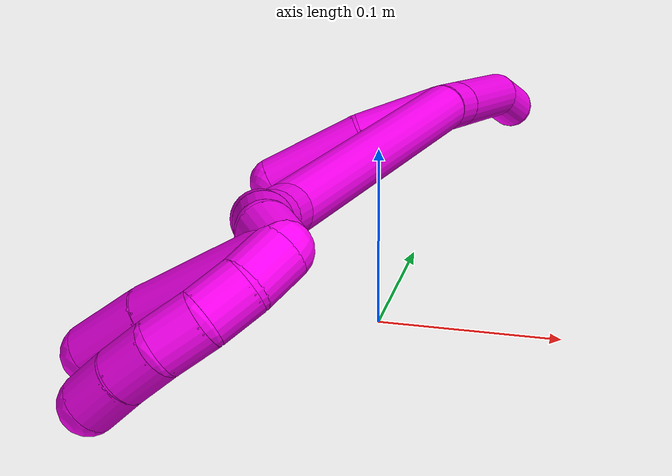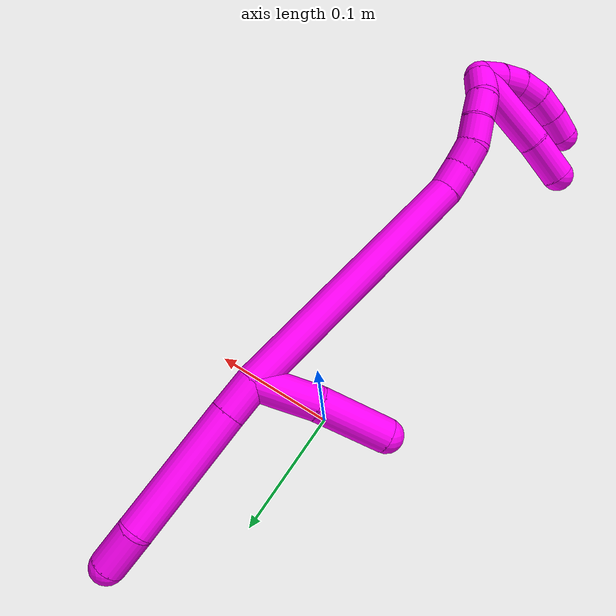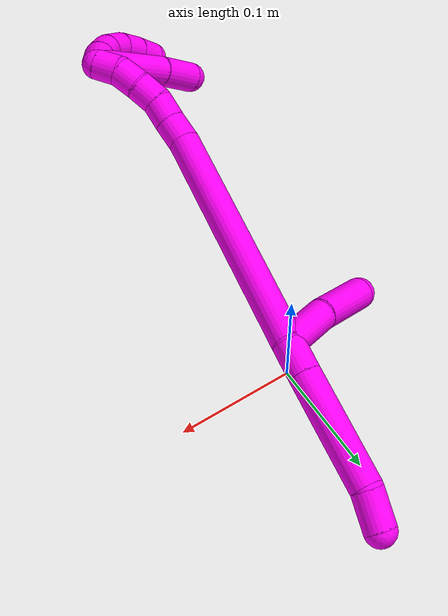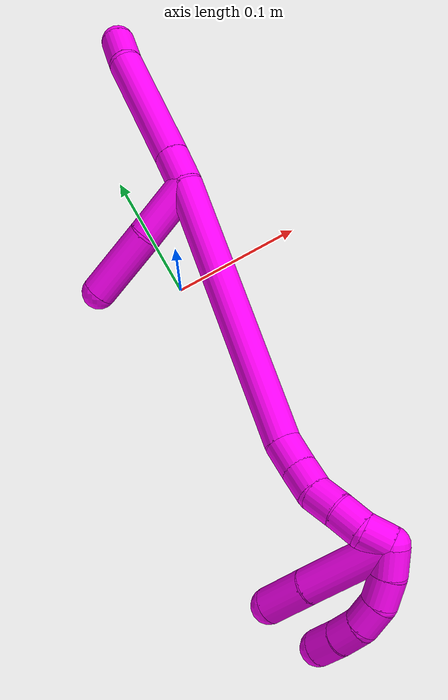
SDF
<sdf version="1.7">
 <world name="default">
  <model name="10">
   <static>0</static>
   <link name="10">
    <collision name="collision-cylinder-e_1_2_8">
     <pose>-0.00021 0.009779 -0.009098 -2.32016 -0.015692 0.03603</pose>
     <geometry><cylinder><radius>0.0125</radius><length>0.026716</length></cylinder></geometry>
     <surface>
      <friction><ode><mu>1.16</mu><mu2>1.16</mu2><slip1>0</slip1><slip2>0</slip2></ode></friction>
      <contact><ode><kp>1e+06</kp><kd>1</kd><max_vel>0</max_vel><min_depth>0.001</min_depth></ode></contact>
     </surface>
    </collision>
    <visual name="visual-cylinder-e_1_2_8">
     <pose>-0.00021 0.009779 -0.009098 -2.32016 -0.015692 0.03603</pose>
     <geometry><cylinder><radius>0.0125</radius><length>0.026716</length></cylinder></geometry>
     <material><ambient>1 0 0.964706 1</ambient></material>
    </visual>
    <collision name="collision-cylinder-e_2_8_9">
     <pose>-0.000662 0.053947 -0.04926 -2.30542 -0.005249 0.011815</pose>
     <geometry><cylinder><radius>0.0125</radius><length>0.092685</length></cylinder></geometry>
     <surface>
      <friction><ode><mu>1.16</mu><mu2>1.16</mu2><slip1>0</slip1><slip2>0</slip2></ode></friction>
      <contact><ode><kp>1e+06</kp><kd>1</kd><max_vel>0</max_vel><min_depth>0.001</min_depth></ode></contact>
     </surface>
    </collision>
    <visual name="visual-cylinder-e_2_8_9">
     <pose>-0.000662 0.053947 -0.04926 -2.30542 -0.005249 0.011815</pose>
     <geometry><cylinder><radius>0.0125</radius><length>0.092685</length></cylinder></geometry>
     <material><ambient>1 0 0.964706 1</ambient></material>
    </visual>
    <collision name="collision-cylinder-e_3_9_6">
     <pose>-0.004688 0.100905 -0.088183 -2.12964 -0.249808 0.44568</pose>
     <geometry><cylinder><radius>0.0125</radius><length>0.030599</length></cylinder></geometry>
     <surface>
      <friction><ode><mu>1.16</mu><mu2>1.16</mu2><slip1>0</slip1><slip2>0</slip2></ode></friction>
      <contact><ode><kp>1e+06</kp><kd>1</kd><max_vel>0</max_vel><min_depth>0.001</min_depth></ode></contact>
     </surface>
    </collision>
    <visual name="visual-cylinder-e_3_9_6">
     <pose>-0.004688 0.100905 -0.088183 -2.12964 -0.249808 0.44568</pose>
     <geometry><cylinder><radius>0.0125</radius><length>0.030599</length></cylinder></geometry>
     <material><ambient>1 0 0.964706 1</ambient></material>
    </visual>
    <collision name="collision-cylinder-e_1_2_10">
     <pose>0.011209 0.007045 0.018524 -0.363422 0.514733 -0.096646</pose>
     <geometry><cylinder><radius>0.0125</radius><length>0.045538</length></cylinder></geometry>
     <surface>
      <friction><ode><mu>1.16</mu><mu2>1.16</mu2><slip1>0</slip1><slip2>0</slip2></ode></friction>
      <contact><ode><kp>1e+06</kp><kd>1</kd><max_vel>0</max_vel><min_depth>0.001</min_depth></ode></contact>
     </surface>
    </collision>
    <visual name="visual-cylinder-e_1_2_10">
     <pose>0.011209 0.007045 0.018524 -0.363422 0.514733 -0.096646</pose>
     <geometry><cylinder><radius>0.0125</radius><length>0.045538</length></cylinder></geometry>
     <material><ambient>1 0 0.964706 1</ambient></material>
    </visual>
    <collision name="collision-cylinder-e_2_10_5">
     <pose>0.033144 0.026181 0.058965 -0.504133 0.404831 -0.105611</pose>
     <geometry><cylinder><radius>0.0125</radius><length>0.054462</length></cylinder></geometry>
     <surface>
      <friction><ode><mu>1.16</mu><mu2>1.16</mu2><slip1>0</slip1><slip2>0</slip2></ode></friction>
      <contact><ode><kp>1e+06</kp><kd>1</kd><max_vel>0</max_vel><min_depth>0.001</min_depth></ode></contact>
     </surface>
    </collision>
    <visual name="visual-cylinder-e_2_10_5">
     <pose>0.033144 0.026181 0.058965 -0.504133 0.404831 -0.105611</pose>
     <geometry><cylinder><radius>0.0125</radius><length>0.054462</length></cylinder></geometry>
     <material><ambient>1 0 0.964706 1</ambient></material>
    </visual>
    <collision name="collision-cylinder-e_1_2_11">
     <pose>-0.002955 -0.0604 0.078212 0.657599 -0.029894 -0.0102</pose>
     <geometry><cylinder><radius>0.0125</radius><length>0.197726</length></cylinder></geometry>
     <surface>
      <friction><ode><mu>1.16</mu><mu2>1.16</mu2><slip1>0</slip1><slip2>0</slip2></ode></friction>
      <contact><ode><kp>1e+06</kp><kd>1</kd><max_vel>0</max_vel><min_depth>0.001</min_depth></ode></contact>
     </surface>
    </collision>
    <visual name="visual-cylinder-e_1_2_11">
     <pose>-0.002955 -0.0604 0.078212 0.657599 -0.029894 -0.0102</pose>
     <geometry><cylinder><radius>0.0125</radius><length>0.197726</length></cylinder></geometry>
     <material><ambient>1 0 0.964706 1</ambient></material>
    </visual>
    <collision name="collision-cylinder-e_2_11_12">
     <pose>-0.006828 -0.129218 0.163298 0.885949 -0.084239 -0.039983</pose>
     <geometry><cylinder><radius>0.0125</radius><length>0.021814</length></cylinder></geometry>
     <surface>
      <friction><ode><mu>1.16</mu><mu2>1.16</mu2><slip1>0</slip1><slip2>0</slip2></ode></friction>
      <contact><ode><kp>1e+06</kp><kd>1</kd><max_vel>0</max_vel><min_depth>0.001</min_depth></ode></contact>
     </surface>
    </collision>
    <visual name="visual-cylinder-e_2_11_12">
     <pose>-0.006828 -0.129218 0.163298 0.885949 -0.084239 -0.039983</pose>
     <geometry><cylinder><radius>0.0125</radius><length>0.021814</length></cylinder></geometry>
     <material><ambient>1 0 0.964706 1</ambient></material>
    </visual>
    <collision name="collision-cylinder-e_3_12_13">
     <pose>-0.007804 -0.146198 0.175607 1.00527 -0.005754 -0.003163</pose>
     <geometry><cylinder><radius>0.0125</radius><length>0.020283</length></cylinder></geometry>
     <surface>
      <friction><ode><mu>1.16</mu><mu2>1.16</mu2><slip1>0</slip1><slip2>0</slip2></ode></friction>
      <contact><ode><kp>1e+06</kp><kd>1</kd><max_vel>0</max_vel><min_depth>0.001</min_depth></ode></contact>
     </surface>
    </collision>
    <visual name="visual-cylinder-e_3_12_13">
     <pose>-0.007804 -0.146198 0.175607 1.00527 -0.005754 -0.003163</pose>
     <geometry><cylinder><radius>0.0125</radius><length>0.020283</length></cylinder></geometry>
     <material><ambient>1 0 0.964706 1</ambient></material>
    </visual>
    <collision name="collision-cylinder-e_4_13_14">
     <pose>-0.010538 -0.163718 0.184627 1.19009 -0.270524 -0.18372</pose>
     <geometry><cylinder><radius>0.0125</radius><length>0.020025</length></cylinder></geometry>
     <surface>
      <friction><ode><mu>1.16</mu><mu2>1.16</mu2><slip1>0</slip1><slip2>0</slip2></ode></friction>
      <contact><ode><kp>1e+06</kp><kd>1</kd><max_vel>0</max_vel><min_depth>0.001</min_depth></ode></contact>
     </surface>
    </collision>
    <visual name="visual-cylinder-e_4_13_14">
     <pose>-0.010538 -0.163718 0.184627 1.19009 -0.270524 -0.18372</pose>
     <geometry><cylinder><radius>0.0125</radius><length>0.020025</length></cylinder></geometry>
     <material><ambient>1 0 0.964706 1</ambient></material>
    </visual>
    <collision name="collision-cylinder-e_5_14_15">
     <pose>-0.016679 -0.180973 0.192676 1.07724 -0.352451 -0.212019</pose>
     <geometry><cylinder><radius>0.0125</radius><length>0.020078</length></cylinder></geometry>
     <surface>
      <friction><ode><mu>1.16</mu><mu2>1.16</mu2><slip1>0</slip1><slip2>0</slip2></ode></friction>
      <contact><ode><kp>1e+06</kp><kd>1</kd><max_vel>0</max_vel><min_depth>0.001</min_depth></ode></contact>
     </surface>
    </collision>
    <visual name="visual-cylinder-e_5_14_15">
     <pose>-0.016679 -0.180973 0.192676 1.07724 -0.352451 -0.212019</pose>
     <geometry><cylinder><radius>0.0125</radius><length>0.020078</length></cylinder></geometry>
     <material><ambient>1 0 0.964706 1</ambient></material>
    </visual>
    <collision name="collision-cylinder-e_6_15_1">
     <pose>-0.026473 -0.19614 0.200812 1.07983 -0.682233 -0.419253</pose>
     <geometry><cylinder><radius>0.0125</radius><length>0.020073</length></cylinder></geometry>
     <surface>
      <friction><ode><mu>1.16</mu><mu2>1.16</mu2><slip1>0</slip1><slip2>0</slip2></ode></friction>
      <contact><ode><kp>1e+06</kp><kd>1</kd><max_vel>0</max_vel><min_depth>0.001</min_depth></ode></contact>
     </surface>
    </collision>
    <visual name="visual-cylinder-e_6_15_1">
     <pose>-0.026473 -0.19614 0.200812 1.07983 -0.682233 -0.419253</pose>
     <geometry><cylinder><radius>0.0125</radius><length>0.020073</length></cylinder></geometry>
     <material><ambient>1 0 0.964706 1</ambient></material>
    </visual>
    <collision name="collision-cylinder-e_1_1_16">
     <pose>-0.032631 -0.203016 0.214483 0.000605 0.017029 5e-06</pose>
     <geometry><cylinder><radius>0.0125</radius><length>0.02</length></cylinder></geometry>
     <surface>
      <friction><ode><mu>1.16</mu><mu2>1.16</mu2><slip1>0</slip1><slip2>0</slip2></ode></friction>
      <contact><ode><kp>1e+06</kp><kd>1</kd><max_vel>0</max_vel><min_depth>0.001</min_depth></ode></contact>
     </surface>
    </collision>
    <visual name="visual-cylinder-e_1_1_16">
     <pose>-0.032631 -0.203016 0.214483 0.000605 0.017029 5e-06</pose>
     <geometry><cylinder><radius>0.0125</radius><length>0.02</length></cylinder></geometry>
     <material><ambient>1 0 0.964706 1</ambient></material>
    </visual>
    <collision name="collision-cylinder-e_2_16_17">
     <pose>-0.03101 -0.201363 0.234236 -0.168476 0.145573 -0.012313</pose>
     <geometry><cylinder><radius>0.0125</radius><length>0.02</length></cylinder></geometry>
     <surface>
      <friction><ode><mu>1.16</mu><mu2>1.16</mu2><slip1>0</slip1><slip2>0</slip2></ode></friction>
      <contact><ode><kp>1e+06</kp><kd>1</kd><max_vel>0</max_vel><min_depth>0.001</min_depth></ode></contact>
     </surface>
    </collision>
    <visual name="visual-cylinder-e_2_16_17">
     <pose>-0.03101 -0.201363 0.234236 -0.168476 0.145573 -0.012313</pose>
     <geometry><cylinder><radius>0.0125</radius><length>0.02</length></cylinder></geometry>
     <material><ambient>1 0 0.964706 1</ambient></material>
    </visual>
    <collision name="collision-cylinder-e_3_17_18">
     <pose>-0.026902 -0.195204 0.252516 -0.485694 0.268988 -0.067018</pose>
     <geometry><cylinder><radius>0.0125</radius><length>0.02</length></cylinder></geometry>
     <surface>
      <friction><ode><mu>1.16</mu><mu2>1.16</mu2><slip1>0</slip1><slip2>0</slip2></ode></friction>
      <contact><ode><kp>1e+06</kp><kd>1</kd><max_vel>0</max_vel><min_depth>0.001</min_depth></ode></contact>
     </surface>
    </collision>
    <visual name="visual-cylinder-e_3_17_18">
     <pose>-0.026902 -0.195204 0.252516 -0.485694 0.268988 -0.067018</pose>
     <geometry><cylinder><radius>0.0125</radius><length>0.02</length></cylinder></geometry>
     <material><ambient>1 0 0.964706 1</ambient></material>
    </visual>
    <collision name="collision-cylinder-e_4_18_19">
     <pose>-0.021727 -0.183695 0.267716 -0.80981 0.254476 -0.109548</pose>
     <geometry><cylinder><radius>0.0125</radius><length>0.02</length></cylinder></geometry>
     <surface>
      <friction><ode><mu>1.16</mu><mu2>1.16</mu2><slip1>0</slip1><slip2>0</slip2></ode></friction>
      <contact><ode><kp>1e+06</kp><kd>1</kd><max_vel>0</max_vel><min_depth>0.001</min_depth></ode></contact>
     </surface>
    </collision>
    <visual name="visual-cylinder-e_4_18_19">
     <pose>-0.021727 -0.183695 0.267716 -0.80981 0.254476 -0.109548</pose>
     <geometry><cylinder><radius>0.0125</radius><length>0.02</length></cylinder></geometry>
     <material><ambient>1 0 0.964706 1</ambient></material>
    </visual>
    <collision name="collision-cylinder-e_5_19_4">
     <pose>-0.017143 -0.169023 0.280472 -0.899909 0.208112 -0.100797</pose>
     <geometry><cylinder><radius>0.0125</radius><length>0.02</length></cylinder></geometry>
     <surface>
      <friction><ode><mu>1.16</mu><mu2>1.16</mu2><slip1>0</slip1><slip2>0</slip2></ode></friction>
      <contact><ode><kp>1e+06</kp><kd>1</kd><max_vel>0</max_vel><min_depth>0.001</min_depth></ode></contact>
     </surface>
    </collision>
    <visual name="visual-cylinder-e_5_19_4">
     <pose>-0.017143 -0.169023 0.280472 -0.899909 0.208112 -0.100797</pose>
     <geometry><cylinder><radius>0.0125</radius><length>0.02</length></cylinder></geometry>
     <material><ambient>1 0 0.964706 1</ambient></material>
    </visual>
    <collision name="collision-cylinder-e_1_1_20">
     <pose>-0.019081 -0.180024 0.223982 -0.867362 0.427162 -0.200204</pose>
     <geometry><cylinder><radius>0.0125</radius><length>0.066234</length></cylinder></geometry>
     <surface>
      <friction><ode><mu>1.16</mu><mu2>1.16</mu2><slip1>0</slip1><slip2>0</slip2></ode></friction>
      <contact><ode><kp>1e+06</kp><kd>1</kd><max_vel>0</max_vel><min_depth>0.001</min_depth></ode></contact>
     </surface>
    </collision>
    <visual name="visual-cylinder-e_1_1_20">
     <pose>-0.019081 -0.180024 0.223982 -0.867362 0.427162 -0.200204</pose>
     <geometry><cylinder><radius>0.0125</radius><length>0.066234</length></cylinder></geometry>
     <material><ambient>1 0 0.964706 1</ambient></material>
    </visual>
    <collision name="collision-cylinder-e_2_20_3">
     <pose>2.7e-05 -0.144729 0.253701 -0.877681 0.324797 -0.153501</pose>
     <geometry><cylinder><radius>0.0125</radius><length>0.033766</length></cylinder></geometry>
     <surface>
      <friction><ode><mu>1.16</mu><mu2>1.16</mu2><slip1>0</slip1><slip2>0</slip2></ode></friction>
      <contact><ode><kp>1e+06</kp><kd>1</kd><max_vel>0</max_vel><min_depth>0.001</min_depth></ode></contact>
     </surface>
    </collision>
    <visual name="visual-cylinder-e_2_20_3">
     <pose>2.7e-05 -0.144729 0.253701 -0.877681 0.324797 -0.153501</pose>
     <geometry><cylinder><radius>0.0125</radius><length>0.033766</length></cylinder></geometry>
     <material><ambient>1 0 0.964706 1</ambient></material>
    </visual>
    <collision name="collision-sphere-3">
     <pose>0.005414 -0.132421 0.263924 0 -0 0</pose>
     <geometry><sphere><radius>0.0125</radius></sphere></geometry>
     <surface>
      <friction><ode><mu>1.16</mu><mu2>1.16</mu2><slip1>0</slip1><slip2>0</slip2></ode></friction>
      <contact><ode><kp>1e+06</kp><kd>1</kd><max_vel>0</max_vel><min_depth>0.001</min_depth></ode></contact>
     </surface>
    </collision>
    <visual name="visual-sphere-3">
     <pose>0.005414 -0.132421 0.263924 0 -0 0</pose>
     <geometry><sphere><radius>0.0125</radius></sphere></geometry>
     <material><ambient>1 0 0.964706 1</ambient></material>
    </visual>
    <collision name="collision-sphere-20">
     <pose>-0.005361 -0.157037 0.243478 0 -0 0</pose>
     <geometry><sphere><radius>0.0125</radius></sphere></geometry>
     <surface>
      <friction><ode><mu>1.16</mu><mu2>1.16</mu2><slip1>0</slip1><slip2>0</slip2></ode></friction>
      <contact><ode><kp>1e+06</kp><kd>1</kd><max_vel>0</max_vel><min_depth>0.001</min_depth></ode></contact>
     </surface>
    </collision>
    <visual name="visual-sphere-20">
     <pose>-0.005361 -0.157037 0.243478 0 -0 0</pose>
     <geometry><sphere><radius>0.0125</radius></sphere></geometry>
     <material><ambient>1 0 0.964706 1</ambient></material>
    </visual>
    <collision name="collision-sphere-4">
     <pose>-0.015077 -0.161359 0.286555 0 -0 0</pose>
     <geometry><sphere><radius>0.0125</radius></sphere></geometry>
     <surface>
      <friction><ode><mu>1.16</mu><mu2>1.16</mu2><slip1>0</slip1><slip2>0</slip2></ode></friction>
      <contact><ode><kp>1e+06</kp><kd>1</kd><max_vel>0</max_vel><min_depth>0.001</min_depth></ode></contact>
     </surface>
    </collision>
    <visual name="visual-sphere-4">
     <pose>-0.015077 -0.161359 0.286555 0 -0 0</pose>
     <geometry><sphere><radius>0.0125</radius></sphere></geometry>
     <material><ambient>1 0 0.964706 1</ambient></material>
    </visual>
    <collision name="collision-sphere-5">
     <pose>0.043869 0.038271 0.080881 0 -0 0</pose>
     <geometry><sphere><radius>0.0125</radius></sphere></geometry>
     <surface>
      <friction><ode><mu>1.16</mu><mu2>1.16</mu2><slip1>0</slip1><slip2>0</slip2></ode></friction>
      <contact><ode><kp>1e+06</kp><kd>1</kd><max_vel>0</max_vel><min_depth>0.001</min_depth></ode></contact>
     </surface>
    </collision>
    <visual name="visual-sphere-5">
     <pose>0.043869 0.038271 0.080881 0 -0 0</pose>
     <geometry><sphere><radius>0.0125</radius></sphere></geometry>
     <material><ambient>1 0 0.964706 1</ambient></material>
    </visual>
    <collision name="collision-sphere-10">
     <pose>0.022419 0.01409 0.037049 0 -0 0</pose>
     <geometry><sphere><radius>0.0125</radius></sphere></geometry>
     <surface>
      <friction><ode><mu>1.16</mu><mu2>1.16</mu2><slip1>0</slip1><slip2>0</slip2></ode></friction>
      <contact><ode><kp>1e+06</kp><kd>1</kd><max_vel>0</max_vel><min_depth>0.001</min_depth></ode></contact>
     </surface>
    </collision>
    <visual name="visual-sphere-10">
     <pose>0.022419 0.01409 0.037049 0 -0 0</pose>
     <geometry><sphere><radius>0.0125</radius></sphere></geometry>
     <material><ambient>1 0 0.964706 1</ambient></material>
    </visual>
    <collision name="collision-sphere-6">
     <pose>-0.00847 0.113475 -0.096043 0 -0 0</pose>
     <geometry><sphere><radius>0.0125</radius></sphere></geometry>
     <surface>
      <friction><ode><mu>1.16</mu><mu2>1.16</mu2><slip1>0</slip1><slip2>0</slip2></ode></friction>
      <contact><ode><kp>1e+06</kp><kd>1</kd><max_vel>0</max_vel><min_depth>0.001</min_depth></ode></contact>
     </surface>
    </collision>
    <visual name="visual-sphere-6">
     <pose>-0.00847 0.113475 -0.096043 0 -0 0</pose>
     <geometry><sphere><radius>0.0125</radius></sphere></geometry>
     <material><ambient>1 0 0.964706 1</ambient></material>
    </visual>
    <collision name="collision-sphere-9">
     <pose>-0.000906 0.088336 -0.080323 0 -0 0</pose>
     <geometry><sphere><radius>0.0125</radius></sphere></geometry>
     <surface>
      <friction><ode><mu>1.16</mu><mu2>1.16</mu2><slip1>0</slip1><slip2>0</slip2></ode></friction>
      <contact><ode><kp>1e+06</kp><kd>1</kd><max_vel>0</max_vel><min_depth>0.001</min_depth></ode></contact>
     </surface>
    </collision>
    <visual name="visual-sphere-9">
     <pose>-0.000906 0.088336 -0.080323 0 -0 0</pose>
     <geometry><sphere><radius>0.0125</radius></sphere></geometry>
     <material><ambient>1 0 0.964706 1</ambient></material>
    </visual>
    <collision name="collision-sphere-2">
     <geometry><sphere><radius>0.0125</radius></sphere></geometry>
     <surface>
      <friction><ode><mu>1.16</mu><mu2>1.16</mu2><slip1>0</slip1><slip2>0</slip2></ode></friction>
      <contact><ode><kp>1e+06</kp><kd>1</kd><max_vel>0</max_vel><min_depth>0.001</min_depth></ode></contact>
     </surface>
    </collision>
    <visual name="visual-sphere-2">
     <geometry><sphere><radius>0.0125</radius></sphere></geometry>
     <material><ambient>1 0 0.964706 1</ambient></material>
    </visual>
    <collision name="collision-sphere-19">
     <pose>-0.01921 -0.176687 0.27439 0 -0 0</pose>
     <geometry><sphere><radius>0.0125</radius></sphere></geometry>
     <surface>
      <friction><ode><mu>1.16</mu><mu2>1.16</mu2><slip1>0</slip1><slip2>0</slip2></ode></friction>
      <contact><ode><kp>1e+06</kp><kd>1</kd><max_vel>0</max_vel><min_depth>0.001</min_depth></ode></contact>
     </surface>
    </collision>
    <visual name="visual-sphere-19">
     <pose>-0.01921 -0.176687 0.27439 0 -0 0</pose>
     <geometry><sphere><radius>0.0125</radius></sphere></geometry>
     <material><ambient>1 0 0.964706 1</ambient></material>
    </visual>
    <collision name="collision-sphere-8">
     <pose>-0.000419 0.019557 -0.018196 0 -0 0</pose>
     <geometry><sphere><radius>0.0125</radius></sphere></geometry>
     <surface>
      <friction><ode><mu>1.16</mu><mu2>1.16</mu2><slip1>0</slip1><slip2>0</slip2></ode></friction>
      <contact><ode><kp>1e+06</kp><kd>1</kd><max_vel>0</max_vel><min_depth>0.001</min_depth></ode></contact>
     </surface>
    </collision>
    <visual name="visual-sphere-8">
     <pose>-0.000419 0.019557 -0.018196 0 -0 0</pose>
     <geometry><sphere><radius>0.0125</radius></sphere></geometry>
     <material><ambient>1 0 0.964706 1</ambient></material>
    </visual>
    <collision name="collision-sphere-11">
     <pose>-0.00591 -0.1208 0.156423 0 -0 0</pose>
     <geometry><sphere><radius>0.0125</radius></sphere></geometry>
     <surface>
      <friction><ode><mu>1.16</mu><mu2>1.16</mu2><slip1>0</slip1><slip2>0</slip2></ode></friction>
      <contact><ode><kp>1e+06</kp><kd>1</kd><max_vel>0</max_vel><min_depth>0.001</min_depth></ode></contact>
     </surface>
    </collision>
    <visual name="visual-sphere-11">
     <pose>-0.00591 -0.1208 0.156423 0 -0 0</pose>
     <geometry><sphere><radius>0.0125</radius></sphere></geometry>
     <material><ambient>1 0 0.964706 1</ambient></material>
    </visual>
    <collision name="collision-sphere-12">
     <pose>-0.007745 -0.137636 0.170173 0 -0 0</pose>
     <geometry><sphere><radius>0.0125</radius></sphere></geometry>
     <surface>
      <friction><ode><mu>1.16</mu><mu2>1.16</mu2><slip1>0</slip1><slip2>0</slip2></ode></friction>
      <contact><ode><kp>1e+06</kp><kd>1</kd><max_vel>0</max_vel><min_depth>0.001</min_depth></ode></contact>
     </surface>
    </collision>
    <visual name="visual-sphere-12">
     <pose>-0.007745 -0.137636 0.170173 0 -0 0</pose>
     <geometry><sphere><radius>0.0125</radius></sphere></geometry>
     <material><ambient>1 0 0.964706 1</ambient></material>
    </visual>
    <collision name="collision-sphere-13">
     <pose>-0.007862 -0.15476 0.181042 0 -0 0</pose>
     <geometry><sphere><radius>0.0125</radius></sphere></geometry>
     <surface>
      <friction><ode><mu>1.16</mu><mu2>1.16</mu2><slip1>0</slip1><slip2>0</slip2></ode></friction>
      <contact><ode><kp>1e+06</kp><kd>1</kd><max_vel>0</max_vel><min_depth>0.001</min_depth></ode></contact>
     </surface>
    </collision>
    <visual name="visual-sphere-13">
     <pose>-0.007862 -0.15476 0.181042 0 -0 0</pose>
     <geometry><sphere><radius>0.0125</radius></sphere></geometry>
     <material><ambient>1 0 0.964706 1</ambient></material>
    </visual>
    <collision name="collision-sphere-14">
     <pose>-0.013214 -0.172676 0.188212 0 -0 0</pose>
     <geometry><sphere><radius>0.0125</radius></sphere></geometry>
     <surface>
      <friction><ode><mu>1.16</mu><mu2>1.16</mu2><slip1>0</slip1><slip2>0</slip2></ode></friction>
      <contact><ode><kp>1e+06</kp><kd>1</kd><max_vel>0</max_vel><min_depth>0.001</min_depth></ode></contact>
     </surface>
    </collision>
    <visual name="visual-sphere-14">
     <pose>-0.013214 -0.172676 0.188212 0 -0 0</pose>
     <geometry><sphere><radius>0.0125</radius></sphere></geometry>
     <material><ambient>1 0 0.964706 1</ambient></material>
    </visual>
    <collision name="collision-sphere-15">
     <pose>-0.020145 -0.189271 0.197139 0 -0 0</pose>
     <geometry><sphere><radius>0.0125</radius></sphere></geometry>
     <surface>
      <friction><ode><mu>1.16</mu><mu2>1.16</mu2><slip1>0</slip1><slip2>0</slip2></ode></friction>
      <contact><ode><kp>1e+06</kp><kd>1</kd><max_vel>0</max_vel><min_depth>0.001</min_depth></ode></contact>
     </surface>
    </collision>
    <visual name="visual-sphere-15">
     <pose>-0.020145 -0.189271 0.197139 0 -0 0</pose>
     <geometry><sphere><radius>0.0125</radius></sphere></geometry>
     <material><ambient>1 0 0.964706 1</ambient></material>
    </visual>
    <collision name="collision-sphere-1">
     <pose>-0.032801 -0.20301 0.204485 0 -0 0</pose>
     <geometry><sphere><radius>0.0125</radius></sphere></geometry>
     <surface>
      <friction><ode><mu>1.16</mu><mu2>1.16</mu2><slip1>0</slip1><slip2>0</slip2></ode></friction>
      <contact><ode><kp>1e+06</kp><kd>1</kd><max_vel>0</max_vel><min_depth>0.001</min_depth></ode></contact>
     </surface>
    </collision>
    <visual name="visual-sphere-1">
     <pose>-0.032801 -0.20301 0.204485 0 -0 0</pose>
     <geometry><sphere><radius>0.0125</radius></sphere></geometry>
     <material><ambient>1 0 0.964706 1</ambient></material>
    </visual>
    <collision name="collision-sphere-18">
     <pose>-0.024244 -0.190704 0.261041 0 -0 0</pose>
     <geometry><sphere><radius>0.0125</radius></sphere></geometry>
     <surface>
      <friction><ode><mu>1.16</mu><mu2>1.16</mu2><slip1>0</slip1><slip2>0</slip2></ode></friction>
      <contact><ode><kp>1e+06</kp><kd>1</kd><max_vel>0</max_vel><min_depth>0.001</min_depth></ode></contact>
     </surface>
    </collision>
    <visual name="visual-sphere-18">
     <pose>-0.024244 -0.190704 0.261041 0 -0 0</pose>
     <geometry><sphere><radius>0.0125</radius></sphere></geometry>
     <material><ambient>1 0 0.964706 1</ambient></material>
    </visual>
    <collision name="collision-sphere-16">
     <pose>-0.032461 -0.203022 0.224482 0 -0 0</pose>
     <geometry><sphere><radius>0.0125</radius></sphere></geometry>
     <surface>
      <friction><ode><mu>1.16</mu><mu2>1.16</mu2><slip1>0</slip1><slip2>0</slip2></ode></friction>
      <contact><ode><kp>1e+06</kp><kd>1</kd><max_vel>0</max_vel><min_depth>0.001</min_depth></ode></contact>
     </surface>
    </collision>
    <visual name="visual-sphere-16">
     <pose>-0.032461 -0.203022 0.224482 0 -0 0</pose>
     <geometry><sphere><radius>0.0125</radius></sphere></geometry>
     <material><ambient>1 0 0.964706 1</ambient></material>
    </visual>
    <collision name="collision-sphere-17">
     <pose>-0.029559 -0.199704 0.24399 0 -0 0</pose>
     <geometry><sphere><radius>0.0125</radius></sphere></geometry>
     <surface>
      <friction><ode><mu>1.16</mu><mu2>1.16</mu2><slip1>0</slip1><slip2>0</slip2></ode></friction>
      <contact><ode><kp>1e+06</kp><kd>1</kd><max_vel>0</max_vel><min_depth>0.001</min_depth></ode></contact>
     </surface>
    </collision>
    <visual name="visual-sphere-17">
     <pose>-0.029559 -0.199704 0.24399 0 -0 0</pose>
     <geometry><sphere><radius>0.0125</radius></sphere></geometry>
     <material><ambient>1 0 0.964706 1</ambient></material>
    </visual>
    <inertial>
     <pose>-0.004953 -0.07245 0.105498 0 -0 0</pose>
     <mass>0.75</mass>
     <inertia>
      <ixx>0.000783</ixx>
      <ixy>0</ixy>
      <ixz>0</ixz>
      <iyy>0.000512</iyy>
      <iyz>0</iyz>
      <izz>0.000337</izz>
     </inertia>
    </inertial>
   </link>
   <pose>0.027449 0.033867 0.11381 -2.13207 -0.580604 2.8929</pose>
  </model>
 </world>
</sdf>
